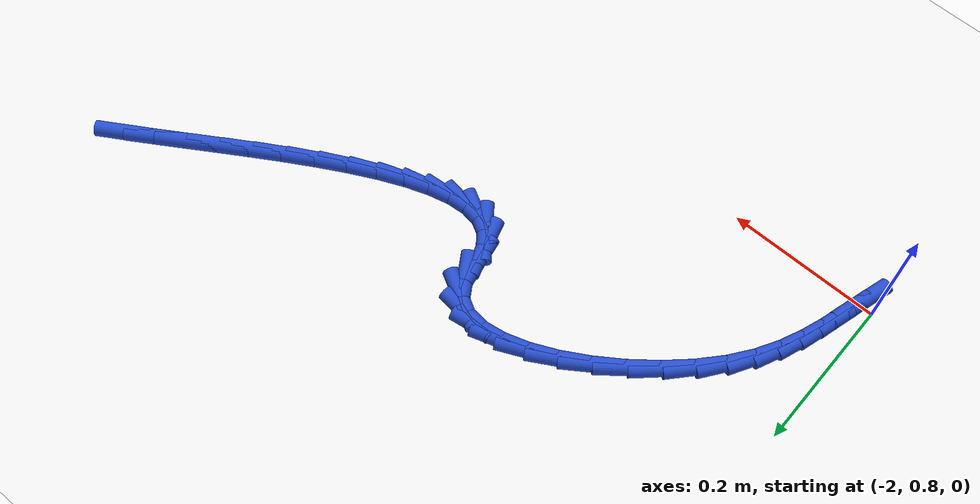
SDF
<sdf version="1.6">
 <world name="default">
  <model name="ground_plane">
   <static>1</static>
   <link name="link">
    <collision name="collision">
     <geometry><plane><normal>0 0 1</normal><size>100 100</size></plane></geometry>
     <surface><friction><ode><mu>100</mu><mu2>50</mu2></ode></friction></surface>
    </collision>
    <visual name="visual">
     <cast_shadows>0</cast_shadows>
     <geometry><plane><normal>0 0 1</normal><size>100 100</size></plane></geometry>
     <material>
      <script><uri>file://media/materials/scripts/gazebo.material</uri><name>Gazebo/WhiteGlow</name></script>
     </material>
    </visual>
   </link>
  </model>
  <model name="line">
   <link name="link_66">
    <pose>-1.1423322731149024 1.2067126380264612 0.01 0 1.57 0.5423333913448553</pose>
    <collision name="collision">
     <geometry><cylinder><radius>0.01</radius><length>0.08</length></cylinder></geometry>
    </collision>
    <visual name="visual">
     <material>
      <script><name>Gazebo/Blue</name><uri>file://media/materials/scripts/gazebo.material</uri></script>
     </material>
     <geometry><cylinder><radius>0.01</radius><length>0.08</length></cylinder></geometry>
    </visual>
   </link>
   <link name="link_67">
    <pose>-1.1747791923547735 1.187159933462133 0.01 0 1.57 0.552928574937167</pose>
    <collision name="collision">
     <geometry><cylinder><radius>0.01</radius><length>0.08</length></cylinder></geometry>
    </collision>
    <visual name="visual">
     <material>
      <script><name>Gazebo/Blue</name><uri>file://media/materials/scripts/gazebo.material</uri></script>
     </material>
     <geometry><cylinder><radius>0.01</radius><length>0.08</length></cylinder></geometry>
    </visual>
   </link>
   <link name="link_68">
    <pose>-1.2085959438779095 1.166290199405517 0.01 0 1.57 0.555753882031087</pose>
    <collision name="collision">
     <geometry><cylinder><radius>0.01</radius><length>0.08</length></cylinder></geometry>
    </collision>
    <visual name="visual">
     <material>
      <script><name>Gazebo/Blue</name><uri>file://media/materials/scripts/gazebo.material</uri></script>
     </material>
     <geometry><cylinder><radius>0.01</radius><length>0.08</length></cylinder></geometry>
    </visual>
   </link>
   <link name="link_69">
    <pose>-1.2437253872947243 1.1444730556503053 0.01 0 1.57 0.5518236315219018</pose>
    <collision name="collision">
     <geometry><cylinder><radius>0.01</radius><length>0.08</length></cylinder></geometry>
    </collision>
    <visual name="visual">
     <material>
      <script><name>Gazebo/Blue</name><uri>file://media/materials/scripts/gazebo.material</uri></script>
     </material>
     <geometry><cylinder><radius>0.01</radius><length>0.08</length></cylinder></geometry>
    </visual>
   </link>
   <link name="link_70">
    <pose>-1.279788515623455 1.1222719751669479 0.01 0 1.57 0.541437743530742</pose>
    <collision name="collision">
     <geometry><cylinder><radius>0.01</radius><length>0.08</length></cylinder></geometry>
    </collision>
    <visual name="visual">
     <material>
      <script><name>Gazebo/Blue</name><uri>file://media/materials/scripts/gazebo.material</uri></script>
     </material>
     <geometry><cylinder><radius>0.01</radius><length>0.08</length></cylinder></geometry>
    </visual>
   </link>
   <link name="link_71">
    <pose>-1.3162710260305968 1.1003319166448253 0.01 0 1.57 0.5241279534006623</pose>
    <collision name="collision">
     <geometry><cylinder><radius>0.01</radius><length>0.08</length></cylinder></geometry>
    </collision>
    <visual name="visual">
     <material>
      <script><name>Gazebo/Blue</name><uri>file://media/materials/scripts/gazebo.material</uri></script>
     </material>
     <geometry><cylinder><radius>0.01</radius><length>0.08</length></cylinder></geometry>
    </visual>
   </link>
   <link name="link_72">
    <pose>-1.3526581476904485 1.0792981206347343 0.01 0 1.57 0.498648207054769</pose>
    <collision name="collision">
     <geometry><cylinder><radius>0.01</radius><length>0.08</length></cylinder></geometry>
    </collision>
    <visual name="visual">
     <material>
      <script><name>Gazebo/Blue</name><uri>file://media/materials/scripts/gazebo.material</uri></script>
     </material>
     <geometry><cylinder><radius>0.01</radius><length>0.08</length></cylinder></geometry>
    </visual>
   </link>
   <link name="link_73">
    <pose>-1.3884351097773118 1.0598158276874725 0.01 0 1.57 0.46271293572074357</pose>
    <collision name="collision">
     <geometry><cylinder><radius>0.01</radius><length>0.08</length></cylinder></geometry>
    </collision>
    <visual name="visual">
     <material>
      <script><name>Gazebo/Blue</name><uri>file://media/materials/scripts/gazebo.material</uri></script>
     </material>
     <geometry><cylinder><radius>0.01</radius><length>0.08</length></cylinder></geometry>
    </visual>
   </link>
   <link name="link_74">
    <pose>-1.4230871414654853 1.0425302783538353 0.01 0 1.57 0.41242749137124246</pose>
    <collision name="collision">
     <geometry><cylinder><radius>0.01</radius><length>0.08</length></cylinder></geometry>
    </collision>
    <visual name="visual">
     <material>
      <script><name>Gazebo/Blue</name><uri>file://media/materials/scripts/gazebo.material</uri></script>
     </material>
     <geometry><cylinder><radius>0.01</radius><length>0.08</length></cylinder></geometry>
    </visual>
   </link>
   <link name="link_75">
    <pose>-1.4560994719292708 1.0280867131846203 0.01 0 1.57 0.3411740225848536</pose>
    <collision name="collision">
     <geometry><cylinder><radius>0.01</radius><length>0.08</length></cylinder></geometry>
    </collision>
    <visual name="visual">
     <material>
      <script><name>Gazebo/Blue</name><uri>file://media/materials/scripts/gazebo.material</uri></script>
     </material>
     <geometry><cylinder><radius>0.01</radius><length>0.08</length></cylinder></geometry>
    </visual>
   </link>
   <link name="link_76">
    <pose>-1.4869573303429682 1.0171303727306245 0.01 0 1.57 0.23750993426473815</pose>
    <collision name="collision">
     <geometry><cylinder><radius>0.01</radius><length>0.08</length></cylinder></geometry>
    </collision>
    <visual name="visual">
     <material>
      <script><name>Gazebo/Blue</name><uri>file://media/materials/scripts/gazebo.material</uri></script>
     </material>
     <geometry><cylinder><radius>0.01</radius><length>0.08</length></cylinder></geometry>
    </visual>
   </link>
   <link name="link_77">
    <pose>-1.5151459458808771 1.0103064975426435 0.01 0 1.57 0.08164978212646098</pose>
    <collision name="collision">
     <geometry><cylinder><radius>0.01</radius><length>0.08</length></cylinder></geometry>
    </collision>
    <visual name="visual">
     <material>
      <script><name>Gazebo/Blue</name><uri>file://media/materials/scripts/gazebo.material</uri></script>
     </material>
     <geometry><cylinder><radius>0.01</radius><length>0.08</length></cylinder></geometry>
    </visual>
   </link>
   <link name="link_78">
    <pose>-1.5401505477172988 1.0082603281714746 0.01 0 1.57 -0.15718343209214214</pose>
    <collision name="collision">
     <geometry><cylinder><radius>0.01</radius><length>0.08</length></cylinder></geometry>
    </collision>
    <visual name="visual">
     <material>
      <script><name>Gazebo/Blue</name><uri>file://media/materials/scripts/gazebo.material</uri></script>
     </material>
     <geometry><cylinder><radius>0.01</radius><length>0.08</length></cylinder></geometry>
    </visual>
   </link>
   <link name="link_79">
    <pose>-1.5614563650265332 1.0116371051679147 0.01 0 1.57 -0.5048273180972255</pose>
    <collision name="collision">
     <geometry><cylinder><radius>0.01</radius><length>0.08</length></cylinder></geometry>
    </collision>
    <visual name="visual">
     <material>
      <script><name>Gazebo/Blue</name><uri>file://media/materials/scripts/gazebo.material</uri></script>
     </material>
     <geometry><cylinder><radius>0.01</radius><length>0.08</length></cylinder></geometry>
    </visual>
   </link>
   <link name="link_80">
    <pose>-1.5785486269828808 1.0210820690827604 0.01 0 1.57 -0.9176561421029488</pose>
    <collision name="collision">
     <geometry><cylinder><radius>0.01</radius><length>0.08</length></cylinder></geometry>
    </collision>
    <visual name="visual">
     <material>
      <script><name>Gazebo/Blue</name><uri>file://media/materials/scripts/gazebo.material</uri></script>
     </material>
     <geometry><cylinder><radius>0.01</radius><length>0.08</length></cylinder></geometry>
    </visual>
   </link>
   <link name="link_81">
    <pose>-1.5909125627606417 1.0372404604668082 0.01 0 1.57 -1.2767776482628976</pose>
    <collision name="collision">
     <geometry><cylinder><radius>0.01</radius><length>0.08</length></cylinder></geometry>
    </collision>
    <visual name="visual">
     <material>
      <script><name>Gazebo/Blue</name><uri>file://media/materials/scripts/gazebo.material</uri></script>
     </material>
     <geometry><cylinder><radius>0.01</radius><length>0.08</length></cylinder></geometry>
    </visual>
   </link>
   <link name="link_82">
    <pose>-1.5980334015341158 1.0607575198708545 0.01 0 1.57 -1.3906837687184497</pose>
    <collision name="collision">
     <geometry><cylinder><radius>0.01</radius><length>0.08</length></cylinder></geometry>
    </collision>
    <visual name="visual">
     <material>
      <script><name>Gazebo/Blue</name><uri>file://media/materials/scripts/gazebo.material</uri></script>
     </material>
     <geometry><cylinder><radius>0.01</radius><length>0.08</length></cylinder></geometry>
    </visual>
   </link>
   <link name="link_83">
    <pose>-1.6029562166731701 1.0877932068360299 0.01 0 1.57 -1.00971986995799</pose>
    <collision name="collision">
     <geometry><cylinder><radius>0.01</radius><length>0.08</length></cylinder></geometry>
    </collision>
    <visual name="visual">
     <material>
      <script><name>Gazebo/Blue</name><uri>file://media/materials/scripts/gazebo.material</uri></script>
     </material>
     <geometry><cylinder><radius>0.01</radius><length>0.08</length></cylinder></geometry>
    </visual>
   </link>
   <link name="link_84">
    <pose>-1.614786244529889 1.106617338481245 0.01 0 1.57 -0.5108415955702487</pose>
    <collision name="collision">
     <geometry><cylinder><radius>0.01</radius><length>0.08</length></cylinder></geometry>
    </collision>
    <visual name="visual">
     <material>
      <script><name>Gazebo/Blue</name><uri>file://media/materials/scripts/gazebo.material</uri></script>
     </material>
     <geometry><cylinder><radius>0.01</radius><length>0.08</length></cylinder></geometry>
    </visual>
   </link>
   <link name="link_85">
    <pose>-1.6332506899437562 1.116965998224406 0.01 0 1.57 -0.11258819765806989</pose>
    <collision name="collision">
     <geometry><cylinder><radius>0.01</radius><length>0.08</length></cylinder></geometry>
    </collision>
    <visual name="visual">
     <material>
      <script><name>Gazebo/Blue</name><uri>file://media/materials/scripts/gazebo.material</uri></script>
     </material>
     <geometry><cylinder><radius>0.01</radius><length>0.08</length></cylinder></geometry>
    </visual>
   </link>
   <link name="link_86">
    <pose>-1.6571882916742702 1.1196725354497459 0.01 0 1.57 0.14420647592337826</pose>
    <collision name="collision">
     <geometry><cylinder><radius>0.01</radius><length>0.08</length></cylinder></geometry>
    </collision>
    <visual name="visual">
     <material>
      <script><name>Gazebo/Blue</name><uri>file://media/materials/scripts/gazebo.material</uri></script>
     </material>
     <geometry><cylinder><radius>0.01</radius><length>0.08</length></cylinder></geometry>
    </visual>
   </link>
   <link name="link_87">
    <pose>-1.685437788480927 1.1155702995414987 0.01 0 1.57 0.31055833401444477</pose>
    <collision name="collision">
     <geometry><cylinder><radius>0.01</radius><length>0.08</length></cylinder></geometry>
    </collision>
    <visual name="visual">
     <material>
      <script><name>Gazebo/Blue</name><uri>file://media/materials/scripts/gazebo.material</uri></script>
     </material>
     <geometry><cylinder><radius>0.01</radius><length>0.08</length></cylinder></geometry>
    </visual>
   </link>
   <link name="link_88">
    <pose>-1.7168379191232253 1.1054926398838976 0.01 0 1.57 0.4276865271208266</pose>
    <collision name="collision">
     <geometry><cylinder><radius>0.01</radius><length>0.08</length></cylinder></geometry>
    </collision>
    <visual name="visual">
     <material>
      <script><name>Gazebo/Blue</name><uri>file://media/materials/scripts/gazebo.material</uri></script>
     </material>
     <geometry><cylinder><radius>0.01</radius><length>0.08</length></cylinder></geometry>
    </visual>
   </link>
   <link name="link_89">
    <pose>-1.7502274223606613 1.0902729058611762 0.01 0 1.57 0.5186069917514701</pose>
    <collision name="collision">
     <geometry><cylinder><radius>0.01</radius><length>0.08</length></cylinder></geometry>
    </collision>
    <visual name="visual">
     <material>
      <script><name>Gazebo/Blue</name><uri>file://media/materials/scripts/gazebo.material</uri></script>
     </material>
     <geometry><cylinder><radius>0.01</radius><length>0.08</length></cylinder></geometry>
    </visual>
   </link>
   <link name="link_90">
    <pose>-1.7844450369527345 1.0707444468575682 0.01 0 1.57 0.5964174492188499</pose>
    <collision name="collision">
     <geometry><cylinder><radius>0.01</radius><length>0.08</length></cylinder></geometry>
    </collision>
    <visual name="visual">
     <material>
      <script><name>Gazebo/Blue</name><uri>file://media/materials/scripts/gazebo.material</uri></script>
     </material>
     <geometry><cylinder><radius>0.01</radius><length>0.08</length></cylinder></geometry>
    </visual>
   </link>
   <link name="link_91">
    <pose>-1.8183295016589405 1.0477406122573076 0.01 0 1.57 0.6697098290971134</pose>
    <collision name="collision">
     <geometry><cylinder><radius>0.01</radius><length>0.08</length></cylinder></geometry>
    </collision>
    <visual name="visual">
     <material>
      <script><name>Gazebo/Blue</name><uri>file://media/materials/scripts/gazebo.material</uri></script>
     </material>
     <geometry><cylinder><radius>0.01</radius><length>0.08</length></cylinder></geometry>
    </visual>
   </link>
   <link name="link_92">
    <pose>-1.850719555238778 1.0220947514446272 0.01 0 1.57 0.7455541335165613</pose>
    <collision name="collision">
     <geometry><cylinder><radius>0.01</radius><length>0.08</length></cylinder></geometry>
    </collision>
    <visual name="visual">
     <material>
      <script><name>Gazebo/Blue</name><uri>file://media/materials/scripts/gazebo.material</uri></script>
     </material>
     <geometry><cylinder><radius>0.01</radius><length>0.08</length></cylinder></geometry>
    </visual>
   </link>
   <link name="link_93">
    <pose>-1.8804539364517443 0.9946402138037609 0.01 0 1.57 0.8315941917409274</pose>
    <collision name="collision">
     <geometry><cylinder><radius>0.01</radius><length>0.08</length></cylinder></geometry>
    </collision>
    <visual name="visual">
     <material>
      <script><name>Gazebo/Blue</name><uri>file://media/materials/scripts/gazebo.material</uri></script>
     </material>
     <geometry><cylinder><radius>0.01</radius><length>0.08</length></cylinder></geometry>
    </visual>
   </link>
   <link name="link_94">
    <pose>-1.906371384057337 0.9662103487189418 0.01 0 1.57 0.9364599677060071</pose>
    <collision name="collision">
     <geometry><cylinder><radius>0.01</radius><length>0.08</length></cylinder></geometry>
    </collision>
    <visual name="visual">
     <material>
      <script><name>Gazebo/Blue</name><uri>file://media/materials/scripts/gazebo.material</uri></script>
     </material>
     <geometry><cylinder><radius>0.01</radius><length>0.08</length></cylinder></geometry>
    </visual>
   </link>
   <link name="link_95">
    <pose>-1.927421369434628 0.9376011739443522 0.01 0 1.57 1.0479825911839005</pose>
    <collision name="collision">
     <geometry><cylinder><radius>0.01</radius><length>0.08</length></cylinder></geometry>
    </collision>
    <visual name="visual">
     <material>
      <script><name>Gazebo/Blue</name><uri>file://media/materials/scripts/gazebo.material</uri></script>
     </material>
     <geometry><cylinder><radius>0.01</radius><length>0.08</length></cylinder></geometry>
    </visual>
   </link>
   <link name="link_96">
    <pose>-1.9437947263516109 0.9091902028978551 0.01 0 1.57 1.1472609727193777</pose>
    <collision name="collision">
     <geometry><cylinder><radius>0.01</radius><length>0.08</length></cylinder></geometry>
    </collision>
    <visual name="visual">
     <material>
      <script><name>Gazebo/Blue</name><uri>file://media/materials/scripts/gazebo.material</uri></script>
     </material>
     <geometry><cylinder><radius>0.01</radius><length>0.08</length></cylinder></geometry>
    </visual>
   </link>
   <link name="link_97">
    <pose>-1.9564618958594373 0.8810921175860063 0.01 0 1.57 1.2258601109075127</pose>
    <collision name="collision">
     <geometry><cylinder><radius>0.01</radius><length>0.08</length></cylinder></geometry>
    </collision>
    <visual name="visual">
     <material>
      <script><name>Gazebo/Blue</name><uri>file://media/materials/scripts/gazebo.material</uri></script>
     </material>
     <geometry><cylinder><radius>0.01</radius><length>0.08</length></cylinder></geometry>
    </visual>
   </link>
   <link name="link_98">
    <pose>-1.9664053893600464 0.853417530700718 0.01 0 1.57 1.2773062993964386</pose>
    <collision name="collision">
     <geometry><cylinder><radius>0.01</radius><length>0.08</length></cylinder></geometry>
    </collision>
    <visual name="visual">
     <material>
      <script><name>Gazebo/Blue</name><uri>file://media/materials/scripts/gazebo.material</uri></script>
     </material>
     <geometry><cylinder><radius>0.01</radius><length>0.08</length></cylinder></geometry>
    </visual>
   </link>
   <link name="link_99">
    <pose>-1.9746077182553785 0.8262770549339027 0.01 0 1.57 1.296917604312788</pose>
    <collision name="collision">
     <geometry><cylinder><radius>0.01</radius><length>0.08</length></cylinder></geometry>
    </collision>
    <visual name="visual">
     <material>
      <script><name>Gazebo/Blue</name><uri>file://media/materials/scripts/gazebo.material</uri></script>
     </material>
     <geometry><cylinder><radius>0.01</radius><length>0.08</length></cylinder></geometry>
    </visual>
   </link>
   <link name="link_100">
    <pose>-1.9820513939473734 0.7997813029774729 0.01 0 1.57 1.2812863711667661</pose>
    <collision name="collision">
     <geometry><cylinder><radius>0.01</radius><length>0.08</length></cylinder></geometry>
    </collision>
    <visual name="visual">
     <material>
      <script><name>Gazebo/Blue</name><uri>file://media/materials/scripts/gazebo.material</uri></script>
     </material>
     <geometry><cylinder><radius>0.01</radius><length>0.08</length></cylinder></geometry>
    </visual>
   </link>
  </model>
 </world>
</sdf>
